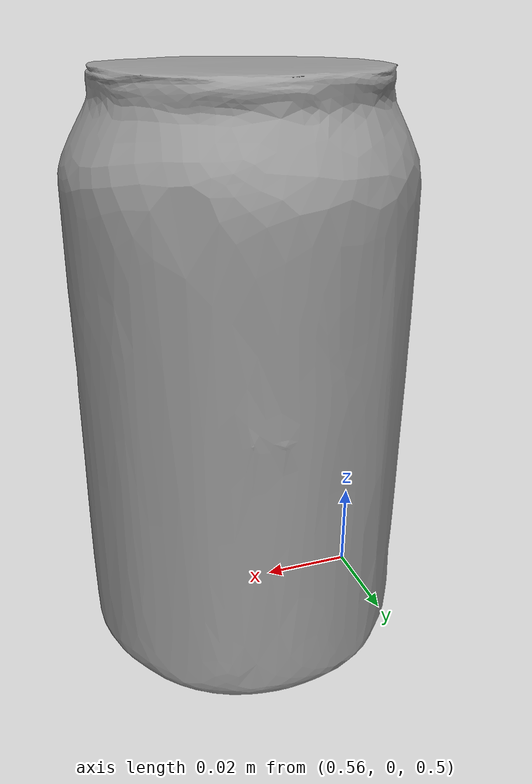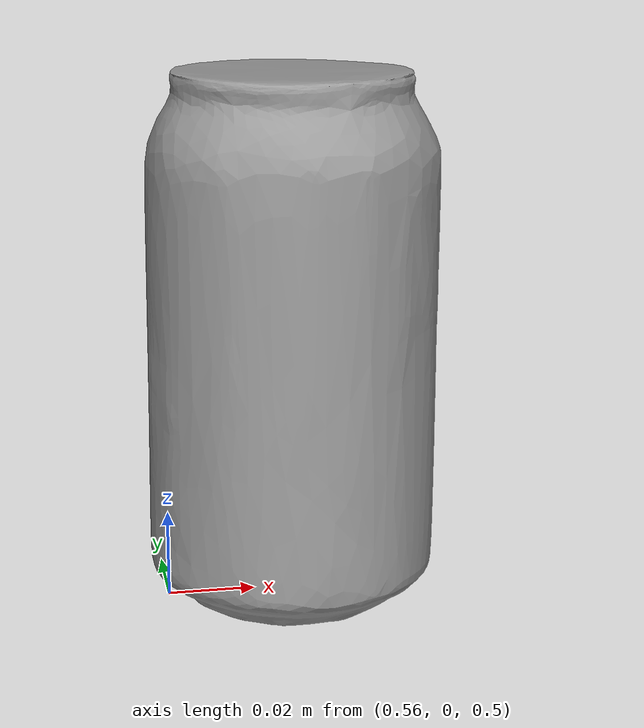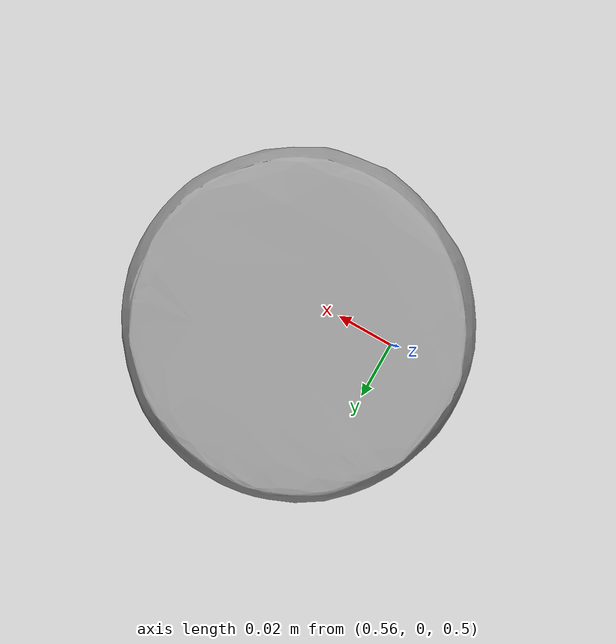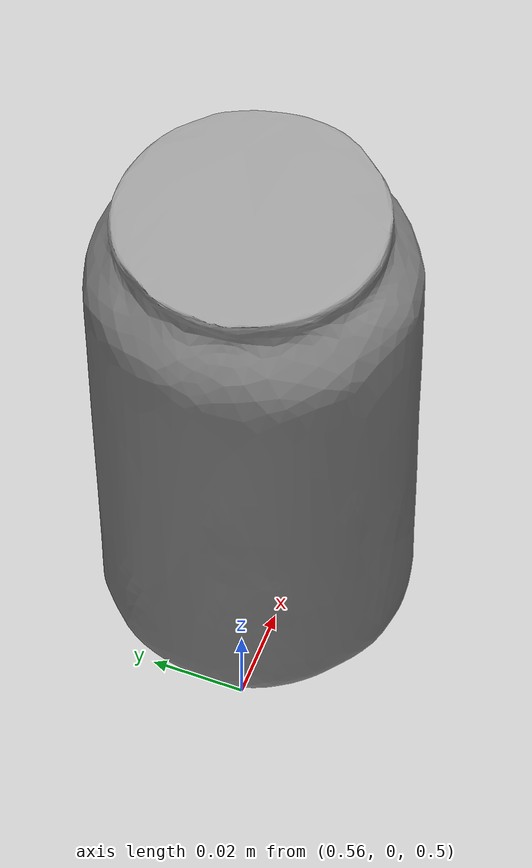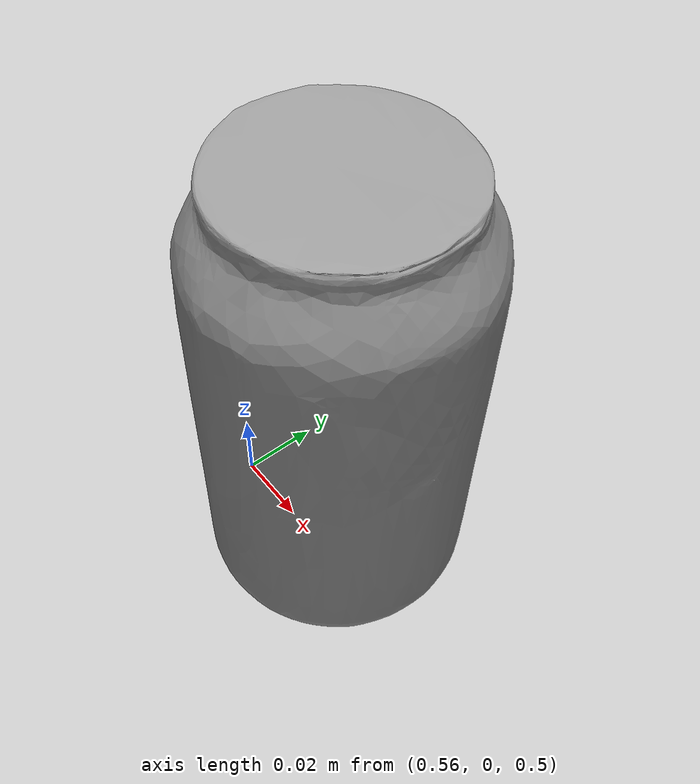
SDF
<sdf version="1.4">
 <world name="default">
  <model name="ground_plane">
   <static>1</static>
   <link name="link">
    <collision name="collision">
     <geometry><plane><normal>0 0 1</normal><size>100 100</size></plane></geometry>
     <surface><friction><ode><mu>100</mu><mu2>50</mu2></ode></friction></surface>
    </collision>
    <visual name="visual">
     <cast_shadows>0</cast_shadows>
     <geometry><plane><normal>0 0 1</normal><size>100 100</size></plane></geometry>
     <material>
      <script><uri>file://media/materials/scripts/gazebo.material</uri><name>Gazebo/Grey</name></script>
     </material>
    </visual>
    <velocity_decay><linear>0</linear><angular>0</angular></velocity_decay>
   </link>
  </model>
  <light name="sun" type="directional">
   <pose>0 0 10 0 -0 0</pose>
   <diffuse>0.8 0.8 0.8 1</diffuse>
   <specular>0.2 0.2 0.2 1</specular>
   <attenuation>
    <range>1000</range>
    <constant>0.9</constant>
    <linear>0.01</linear>
    <quadratic>0.001</quadratic>
   </attenuation>
   <direction>-0.5 0.1 -0.9</direction>
  </light>
  <physics type="ode">
   <max_step_size>0.001</max_step_size>
   <real_time_factor>1</real_time_factor>
   <real_time_update_rate>1000</real_time_update_rate>
   <gravity>0 0 -9.8</gravity>
  </physics>
  <scene><ambient>0.4 0.4 0.4 1</ambient><background>0.7 0.7 0.7 1</background><shadows>1</shadows></scene>
  <model name="coke_can">
   <link name="link">
    <inertial>
     <pose>-0.01 -0.012 0.15 0 -0 0</pose>
     <mass>0.39</mass>
     <inertia><ixx>0.00058</ixx><ixy>0</ixy><ixz>0</ixz><iyy>0.00058</iyy><iyz>0</iyz><izz>0.00019</izz></inertia>
    </inertial>
    <collision name="collision">
     <pose>0 0 0.5 0 -0 0</pose>
     <geometry>
      <mesh>
       <uri>/home/tataha/workspace/kuri_catkin_ws/src/mitsubishi_arm/mitsubishi_arm_gazebo/worlds/coke_can.dae</uri>
      </mesh>
     </geometry>
     <surface>
      <friction><ode><mu>1</mu><mu2>1</mu2></ode></friction>
      <contact><ode><kp>1e+07</kp><kd>1</kd><min_depth>0.001</min_depth><max_vel>0.1</max_vel></ode></contact>
     </surface>
    </collision>
    <visual name="visual">
     <pose>0 0 0.5 0 -0 0</pose>
     <geometry>
      <mesh>
       <uri>/home/tataha/workspace/kuri_catkin_ws/src/mitsubishi_arm/mitsubishi_arm_gazebo/worlds/coke_can.dae</uri>
      </mesh>
     </geometry>
    </visual>
    <velocity_decay><linear>0</linear><angular>0</angular></velocity_decay>
   </link>
   <pose>0.588876 -5.6e-05 -0.003988 -0.01578 0.003494 0.000221</pose>
   <static>0</static>
  </model>
 </world>
</sdf>
